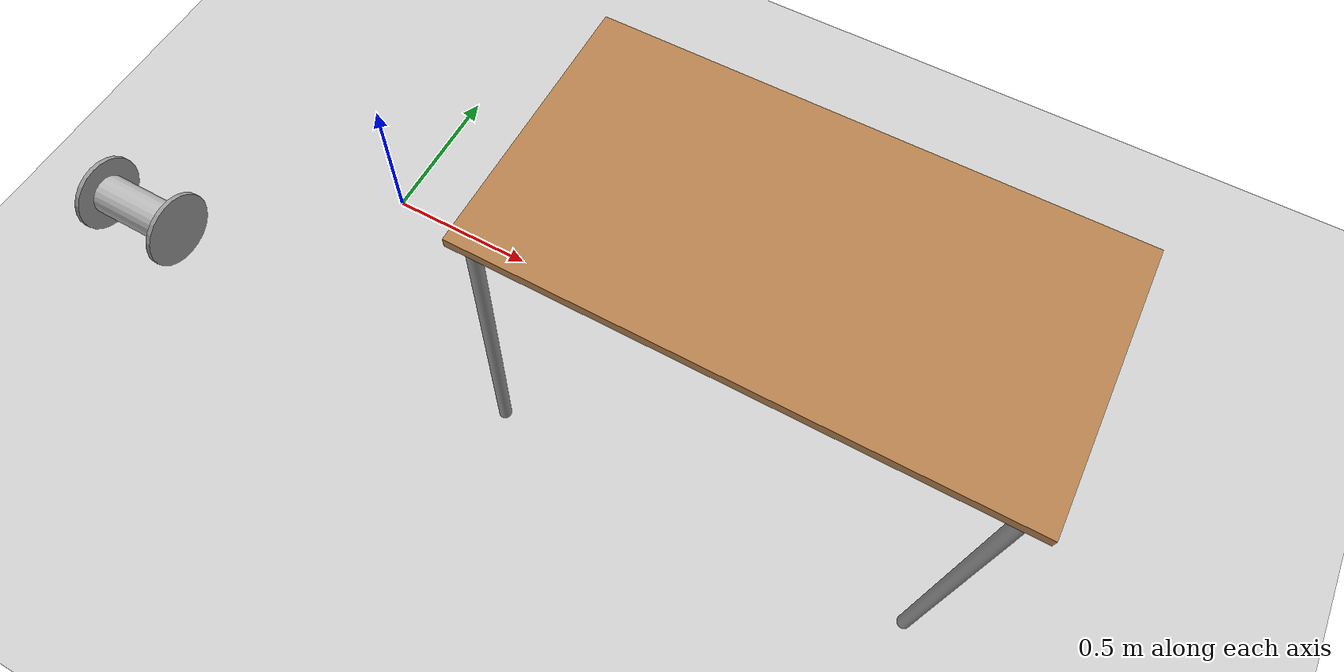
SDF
<sdf version="1.6">
 <world name="default">
  <scene>
   <ambient>0.2 0.2 0.2 1</ambient>
   <background>1 1 1 1</background>
   <shadows>0</shadows>
   <grid>0</grid>
   <origin_visual>0</origin_visual>
  </scene>
  <gravity>0 0 -9.8</gravity>
  <magnetic_field>6e-06 2.3e-05 -4.2e-05</magnetic_field>
  <atmosphere type="adiabatic"/>
  <physics name="dart_2ms" default="1" type="dart">
   <max_step_size>0.002</max_step_size>
   <real_time_factor>2</real_time_factor>
   <real_time_update_rate>-1</real_time_update_rate>
  </physics>
  <spherical_coordinates>
   <surface_model>EARTH_WGS84</surface_model>
   <latitude_deg>0</latitude_deg>
   <longitude_deg>0</longitude_deg>
   <elevation>0</elevation>
   <heading_deg>0</heading_deg>
  </spherical_coordinates>
  <model name="ground_plane">
   <static>1</static>
   <link name="link">
    <collision name="collision">
     <geometry><plane><normal>0 0 1</normal><size>100 100</size></plane></geometry>
     <surface>
      <contact><collide_bitmask>65535</collide_bitmask></contact>
      <friction><ode><mu>100</mu><mu2>50</mu2></ode></friction>
     </surface>
    </collision>
    <visual name="visual">
     <cast_shadows>0</cast_shadows>
     <geometry><plane><normal>0 0 1</normal><size>100 100</size></plane></geometry>
     <material>
      <script><uri>file://media/materials/scripts/gazebo.material</uri><name>Gazebo/Grey</name></script>
     </material>
    </visual>
   </link>
   <pose>1.72751 -3.39885 0 0 -0 0</pose>
  </model>
  <light name="user_point_light_0" type="point">
   <pose>-0.732846 0.62524 1 0 -0 0</pose>
   <diffuse>0.5 0.5 0.5 1</diffuse>
   <specular>0.1 0.1 0.1 1</specular>
   <attenuation>
    <range>20</range>
    <constant>0.5</constant>
    <linear>0.01</linear>
    <quadratic>0.001</quadratic>
   </attenuation>
   <cast_shadows>0</cast_shadows>
   <direction>0 0 -1</direction>
  </light>
  <model name="table">
   <static>1</static>
   <link name="link">
    <collision name="surface">
     <pose>0 0 1 0 -0 0</pose>
     <geometry><box><size>1.5 0.8 0.03</size></box></geometry>
     <surface><friction><ode><mu>0.6</mu><mu2>0.6</mu2></ode></friction></surface>
    </collision>
    <visual name="visual1">
     <pose>0 0 1 0 -0 0</pose>
     <geometry><box><size>1.5 0.8 0.03</size></box></geometry>
     <material>
      <script><uri>file://media/materials/scripts/gazebo.material</uri><name>Gazebo/Wood</name></script>
     </material>
    </visual>
    <collision name="front_left_leg">
     <pose>0.68 0.38 0.5 0 -0 0</pose>
     <geometry><cylinder><radius>0.02</radius><length>1</length></cylinder></geometry>
    </collision>
    <visual name="front_left_leg">
     <pose>0.68 0.38 0.5 0 -0 0</pose>
     <geometry><cylinder><radius>0.02</radius><length>1</length></cylinder></geometry>
     <material>
      <script><uri>file://media/materials/scripts/gazebo.material</uri><name>Gazebo/Grey</name></script>
     </material>
    </visual>
    <collision name="front_right_leg">
     <pose>0.68 -0.38 0.5 0 -0 0</pose>
     <geometry><cylinder><radius>0.02</radius><length>1</length></cylinder></geometry>
    </collision>
    <visual name="front_right_leg">
     <pose>0.68 -0.38 0.5 0 -0 0</pose>
     <geometry><cylinder><radius>0.02</radius><length>1</length></cylinder></geometry>
     <material>
      <script><uri>file://media/materials/scripts/gazebo.material</uri><name>Gazebo/Grey</name></script>
     </material>
    </visual>
    <collision name="back_right_leg">
     <pose>-0.68 -0.38 0.5 0 -0 0</pose>
     <geometry><cylinder><radius>0.02</radius><length>1</length></cylinder></geometry>
    </collision>
    <visual name="back_right_leg">
     <pose>-0.68 -0.38 0.5 0 -0 0</pose>
     <geometry><cylinder><radius>0.02</radius><length>1</length></cylinder></geometry>
     <material>
      <script><uri>file://media/materials/scripts/gazebo.material</uri><name>Gazebo/Grey</name></script>
     </material>
    </visual>
    <collision name="back_left_leg">
     <pose>-0.68 0.38 0.5 0 -0 0</pose>
     <geometry><cylinder><radius>0.02</radius><length>1</length></cylinder></geometry>
    </collision>
    <visual name="back_left_leg">
     <pose>-0.68 0.38 0.5 0 -0 0</pose>
     <geometry><cylinder><radius>0.02</radius><length>1</length></cylinder></geometry>
     <material>
      <script><uri>file://media/materials/scripts/gazebo.material</uri><name>Gazebo/Grey</name></script>
     </material>
    </visual>
   </link>
   <pose>1.41844 -0.127027 0 0 -0 0</pose>
  </model>
  <audio><device>default</device></audio>
  <model name="beer">
   <link name="link">
    <pose>-0 0 0.116021 0 -0 0</pose>
    <inertial>
     <mass>0.179344</mass>
     <inertia>
      <ixx>0.000912286</ixx>
      <ixy>0</ixy>
      <ixz>0</ixz>
      <iyy>0.000912286</iyy>
      <iyz>0</iyz>
      <izz>0.000243359</izz>
     </inertia>
    </inertial>
    <visual name="visual">
     <geometry><cylinder><radius>0.0520949</radius><length>0.23</length></cylinder></geometry>
     <material>
      <script>
       <uri>model://beer/materials/scripts</uri>
       <uri>model://beer/materials/textures</uri>
       <name>Beer/Diffuse</name>
      </script>
      <shader type="pixel"/>
      <emissive>0 0 0 1</emissive>
     </material>
    </visual>
    <collision name="collision">
     <geometry><cylinder><radius>0.052095</radius><length>0.23</length></cylinder></geometry>
     <surface>
      <friction>
       <ode><mu>1</mu><mu2>1</mu2><fdir1>0 0 0</fdir1><slip1>0</slip1><slip2>0</slip2></ode>
       <torsional>
        <coefficient>1</coefficient>
        <patch_radius>0</patch_radius>
        <surface_radius>0</surface_radius>
        <use_patch_radius>1</use_patch_radius>
        <ode><slip>0</slip></ode>
       </torsional>
      </friction>
      <bounce><restitution_coefficient>0</restitution_coefficient><threshold>1e+06</threshold></bounce>
      <contact>
       <collide_without_contact>0</collide_without_contact>
       <collide_without_contact_bitmask>1</collide_without_contact_bitmask>
       <collide_bitmask>1</collide_bitmask>
       <ode>
        <soft_cfm>0</soft_cfm>
        <soft_erp>0.2</soft_erp>
        <kp>1e+13</kp>
        <kd>1</kd>
        <max_vel>0.01</max_vel>
        <min_depth>0</min_depth>
       </ode>
       <bullet>
        <split_impulse>1</split_impulse>
        <split_impulse_penetration_threshold>-0.01</split_impulse_penetration_threshold>
        <soft_cfm>0</soft_cfm>
        <soft_erp>0.2</soft_erp>
        <kp>1e+13</kp>
        <kd>1</kd>
       </bullet>
      </contact>
     </surface>
    </collision>
   </link>
   <link name="link_0">
    <inertial>
     <mass>0.00052946</mass>
     <inertia>
      <ixx>1.49e-06</ixx>
      <ixy>0</ixy>
      <ixz>0</ixz>
      <iyy>1.49e-06</iyy>
      <iyz>0</iyz>
      <izz>2.97e-06</izz>
     </inertia>
    </inertial>
    <pose>-2e-06 3e-06 0.006998 2.6e-05 1.5e-05 -0.000939</pose>
    <visual name="visual">
     <geometry><cylinder><radius>0.1</radius><length>0.011959</length></cylinder></geometry>
     <material>
      <script><uri>file://media/materials/scripts/gazebo.material</uri><name>Gazebo/Grey</name></script>
      <shader type="pixel"><normal_map>__default__</normal_map></shader>
      <emissive>0 0 0 1</emissive>
      <ambient>0.3 0.3 0.3 1</ambient>
      <diffuse>0.7 0.7 0.7 1</diffuse>
      <specular>0.01 0.01 0.01 1</specular>
     </material>
     <cast_shadows>0</cast_shadows>
    </visual>
    <collision name="collision">
     <geometry><cylinder><radius>0.105838</radius><length>0.011959</length></cylinder></geometry>
     <surface>
      <friction>
       <ode><mu>1</mu><mu2>1</mu2><fdir1>0 0 0</fdir1><slip1>0</slip1><slip2>0</slip2></ode>
       <torsional>
        <coefficient>1</coefficient>
        <patch_radius>0</patch_radius>
        <surface_radius>0</surface_radius>
        <use_patch_radius>1</use_patch_radius>
        <ode><slip>0</slip></ode>
       </torsional>
      </friction>
      <bounce><restitution_coefficient>0</restitution_coefficient><threshold>1e+06</threshold></bounce>
      <contact>
       <collide_without_contact>0</collide_without_contact>
       <collide_without_contact_bitmask>1</collide_without_contact_bitmask>
       <collide_bitmask>1</collide_bitmask>
       <ode>
        <soft_cfm>0</soft_cfm>
        <soft_erp>0.2</soft_erp>
        <kp>1e+13</kp>
        <kd>1</kd>
        <max_vel>0.01</max_vel>
        <min_depth>0</min_depth>
       </ode>
       <bullet>
        <split_impulse>1</split_impulse>
        <split_impulse_penetration_threshold>-0.01</split_impulse_penetration_threshold>
        <soft_cfm>0</soft_cfm>
        <soft_erp>0.2</soft_erp>
        <kp>1e+13</kp>
        <kd>1</kd>
       </bullet>
      </contact>
     </surface>
    </collision>
   </link>
   <link name="link_0_clone">
    <inertial>
     <mass>0.00050523</mass>
     <inertia>
      <ixx>1.39e-06</ixx>
      <ixy>0</ixy>
      <ixz>0</ixz>
      <iyy>1.39e-06</iyy>
      <iyz>0</iyz>
      <izz>2.76e-06</izz>
     </inertia>
    </inertial>
    <pose>1e-06 -2e-06 0.235988 5.2e-05 3e-05 -0.001878</pose>
    <visual name="visual">
     <geometry><cylinder><radius>0.1</radius><length>0.011959</length></cylinder></geometry>
     <material>
      <script><uri>file://media/materials/scripts/gazebo.material</uri><name>Gazebo/Grey</name></script>
      <shader type="pixel"><normal_map>__default__</normal_map></shader>
      <emissive>0 0 0 1</emissive>
      <ambient>0.3 0.3 0.3 1</ambient>
      <diffuse>0.7 0.7 0.7 1</diffuse>
      <specular>0.01 0.01 0.01 1</specular>
     </material>
     <cast_shadows>0</cast_shadows>
    </visual>
    <collision name="collision">
     <geometry><cylinder><radius>0.104538</radius><length>0.011959</length></cylinder></geometry>
     <surface>
      <friction>
       <ode><mu>1</mu><mu2>1</mu2><fdir1>0 0 0</fdir1><slip1>0</slip1><slip2>0</slip2></ode>
       <torsional>
        <coefficient>1</coefficient>
        <patch_radius>0</patch_radius>
        <surface_radius>0</surface_radius>
        <use_patch_radius>1</use_patch_radius>
        <ode><slip>0</slip></ode>
       </torsional>
      </friction>
      <bounce><restitution_coefficient>0</restitution_coefficient><threshold>1e+06</threshold></bounce>
      <contact>
       <collide_without_contact>0</collide_without_contact>
       <collide_without_contact_bitmask>1</collide_without_contact_bitmask>
       <collide_bitmask>1</collide_bitmask>
       <ode>
        <soft_cfm>0</soft_cfm>
        <soft_erp>0.2</soft_erp>
        <kp>1e+13</kp>
        <kd>1</kd>
        <max_vel>0.01</max_vel>
        <min_depth>0</min_depth>
       </ode>
       <bullet>
        <split_impulse>1</split_impulse>
        <split_impulse_penetration_threshold>-0.01</split_impulse_penetration_threshold>
        <soft_cfm>0</soft_cfm>
        <soft_erp>0.2</soft_erp>
        <kp>1e+13</kp>
        <kd>1</kd>
       </bullet>
      </contact>
     </surface>
    </collision>
   </link>
   <joint name="link_JOINT_1" type="fixed">
    <parent>link</parent>
    <child>link_0_clone</child>
    <physics>
     <ode><limit><cfm>0</cfm><erp>0.2</erp></limit><suspension><cfm>0</cfm><erp>0.2</erp></suspension></ode>
    </physics>
   </joint>
   <joint name="link_JOINT_2" type="fixed">
    <parent>link</parent>
    <child>link_0</child>
    <pose>0 0 0 0 -0.01 -0.01</pose>
    <physics>
     <ode><limit><cfm>0</cfm><erp>0.2</erp></limit><suspension><cfm>0</cfm><erp>0.2</erp></suspension></ode>
    </physics>
   </joint>
   <static>0</static>
   <pose>0.009275 -0.763773 0.874887 3.14159 -1.57079 3.14159</pose>
  </model>
 </world>
</sdf>
